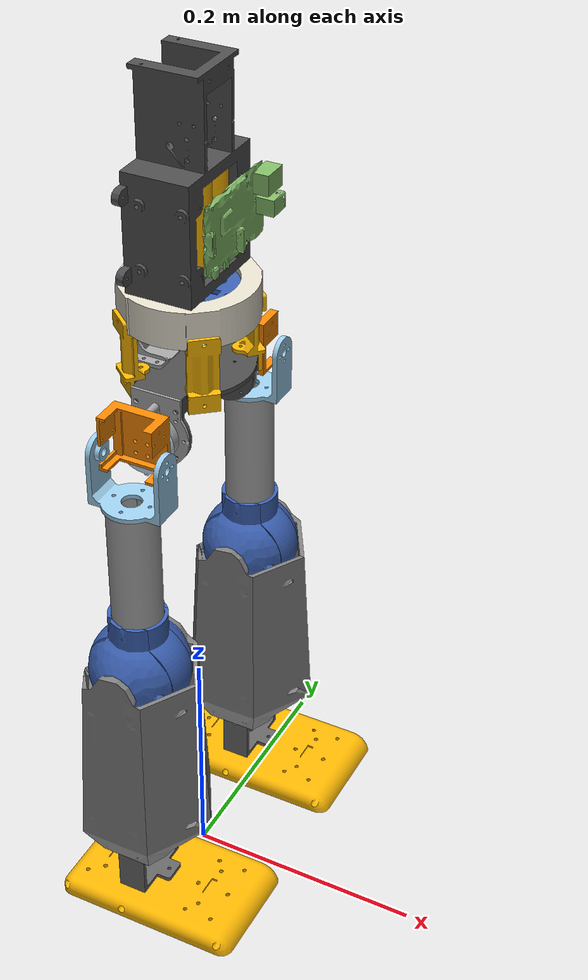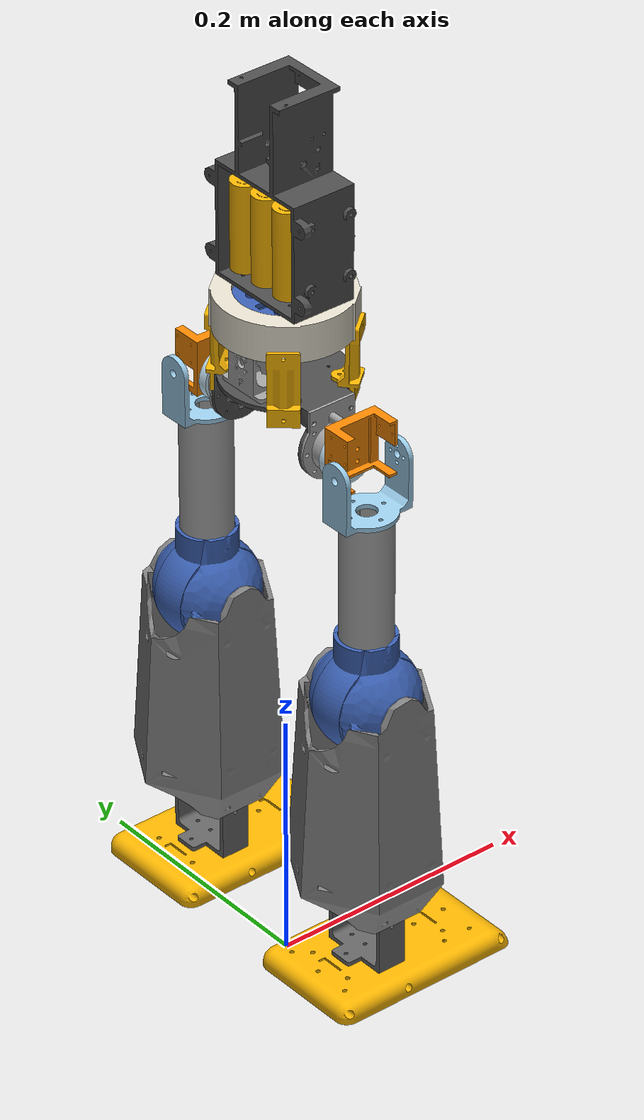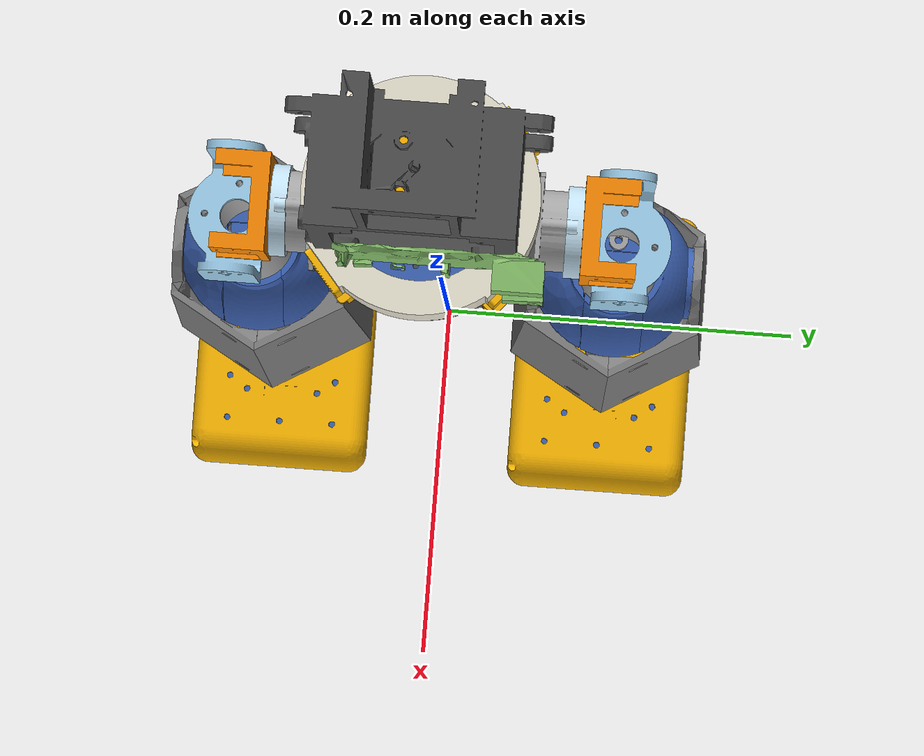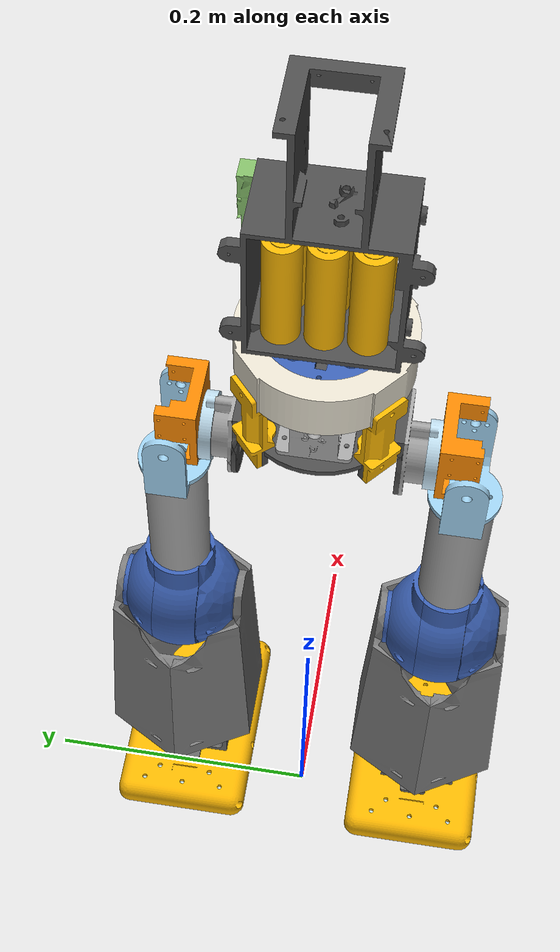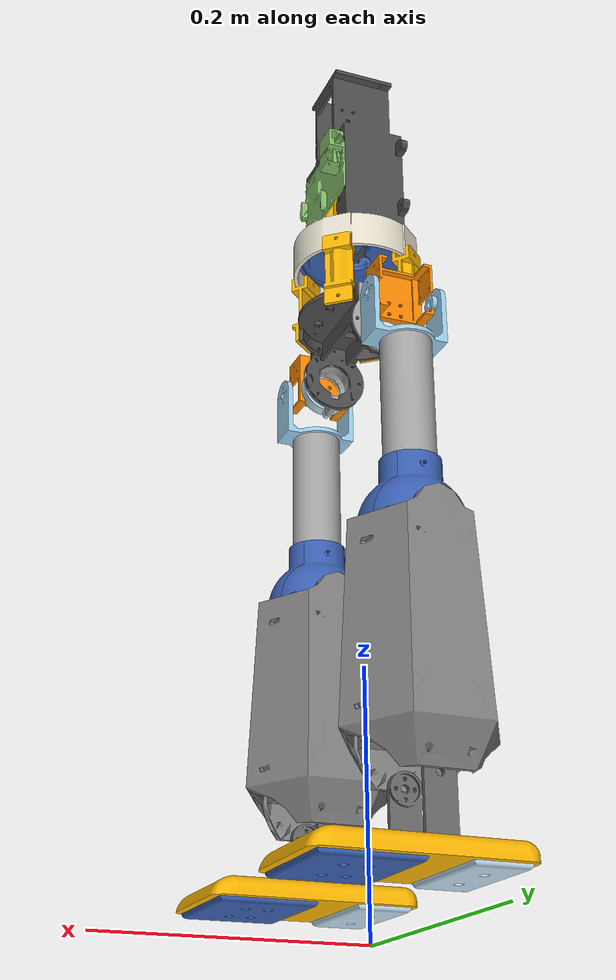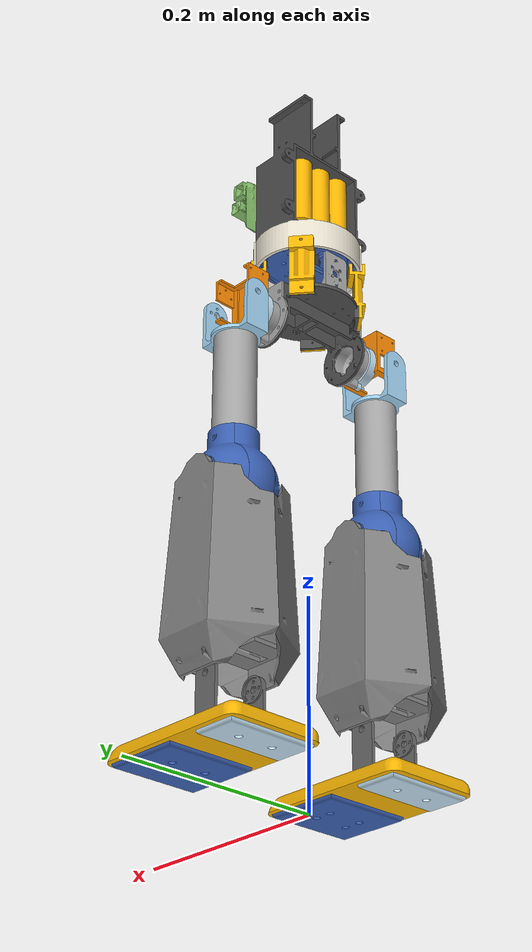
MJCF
<mujoco model="WildRobotDev">
  <option>
    <flag eulerdamp="disable" />
  </option>
  <compiler angle="radian" meshdir="assets" autolimits="true" />
  <default>
    <default class="WildRobotDev">
      <joint frictionloss="0.1" armature="0.005" />
      <position kp="50" dampratio="1" />
      <default class="visual">
        <geom type="mesh" contype="0" conaffinity="0" group="2" />
      </default>
      <default class="collision">
        <geom group="3" type="sphere" />
      </default>
    </default>
    <default class="htd45hServo">
      <geom contype="0" conaffinity="0" />
      <joint damping="0.08516" frictionloss="0.022275" armature="0.024992" />
      <position kp="21.1" kv="0.5" forcerange="-4.0 4.0" />
    </default>
    <default class="backlash">
      <joint damping="0.01" frictionloss="0" armature="0.01" limited="true" range="-0.008726646259971648 0.008726646259971648" />
    </default>
  </default>
  <sensor>
    <gyro site="chest_imu" name="chest_imu_gyro" noise="0.0002" cutoff="100" />
    <accelerometer site="chest_imu" name="chest_imu_accel" noise="0.0015" cutoff="100" />
    <magnetometer site="chest_imu" name="chest_imu_mag" noise="0.3" />
    <framequat objtype="site" objname="chest_imu" name="chest_imu_quat" />
    <velocimeter site="pelvis_mimic" name="pelvis_local_linvel" />
  </sensor>
  <worldbody>
    <body name="waist" pos="0 0 0.5" quat="1 0 0 0" childclass="WildRobotDev">
      <freejoint name="waist_freejoint" />
      <inertial pos="0.00207427 0.00159876 0.0785345" mass="1.28083" fullinertia="0.00602084 0.00549671 0.00162867 -0.000111987 -0.00020739 -0.000103631" />
      <geom type="mesh" class="visual" pos="0.000128558 -0.000153209 0.12518" quat="0.34202 -1.65887e-17 -5.55112e-17 -0.939693" mesh="waist_trunk_support" material="waist_trunk_support_material" />
      <geom type="mesh" class="visual" pos="-1.8982e-19 0 0" quat="0.707107 0 0 -0.707107" mesh="trunk_bottom" material="trunk_bottom_material" />
      <geom type="mesh" class="visual" pos="5.89806e-17 -3.1225e-17 0" quat="0.707107 0 0 -0.707107" mesh="trunk_servo_connect" material="trunk_servo_connect_material" />
      <geom type="mesh" class="visual" pos="1.38778e-17 -0.00025 1.47949e-17" quat="0.707107 0 0 0.707107" mesh="hip_cover" material="hip_cover_material" />
      <geom type="mesh" class="visual" pos="-1.59595e-16 -1.66533e-16 0.12518" quat="0.34202 -5.80156e-17 0 -0.939693" mesh="scroll_out" material="scroll_out_material" />
      <geom type="mesh" class="visual" pos="0.000128558 0.000153209 0.12518" quat="0.939693 -2.94205e-17 -1.35637e-16 -0.34202" mesh="waist_trunk_support" material="waist_trunk_support_material" />
      <geom type="mesh" class="visual" pos="1.38778e-17 -0.0001 1.53661e-17" quat="0.707107 0 1.11022e-16 0.707107" mesh="hip_trunk_connect" material="hip_trunk_connect_material" />
      <geom type="mesh" class="visual" pos="-0.000128558 -0.000153209 0.12518" quat="0.34202 -0 -5.91646e-31 0.939693" mesh="waist_trunk_support" material="waist_trunk_support_material" />
      <geom type="mesh" class="visual" pos="-0.000128558 0.000153209 0.12518" quat="0.939693 0 -0 0.34202" mesh="waist_trunk_support" material="waist_trunk_support_material" />
      <geom type="mesh" class="visual" pos="-1.38778e-17 0.00025 1.46954e-17" quat="0.707107 0 2.22045e-16 -0.707107" mesh="hip_cover" material="hip_cover_material" />
      <geom type="mesh" class="visual" pos="-1.38778e-17 0.0001 1.3452e-17" quat="0.707107 0 1.11022e-16 -0.707107" mesh="hip_trunk_connect" material="hip_trunk_connect_material" />
      <geom type="mesh" class="visual" pos="-0.21121 0.0233777 0.0810344" quat="0.499502 -0.500498 -0.500085 0.499915" mesh="cell" material="cell_material" />
      <geom type="mesh" class="visual" pos="0.031089 0.00995652 0.116228" quat="0.000704463 0.707107 0.707106 0.000120096" mesh="rp_assemble" material="rp_assemble_material" />
      <geom type="mesh" class="visual" pos="0.023299 -4.3479e-05 0.116227" quat="0.707106 0.000120096 -0.000704463 -0.707107" mesh="batterybox" material="batterybox_material" />
      <geom type="mesh" class="visual" pos="-0.23501 -7.2321e-05 0.0810261" quat="0.499502 -0.500498 -0.500085 0.499915" mesh="cell" material="cell_material" />
      <geom type="mesh" class="visual" pos="-0.23501 -0.0235223 0.0810454" quat="0.499502 -0.500498 -0.500085 0.499915" mesh="cell" material="cell_material" />
      <geom type="mesh" class="visual" pos="-0.000210713 -3.65539e-05 0.124579" quat="0.707107 -0.000704463 -0.000120096 0.707106" mesh="waist_platform" material="waist_platform_material" />
      <geom type="mesh" class="visual" pos="-0.000210713 -3.65539e-05 0.124579" quat="0.707107 -0.000704463 -0.000120096 0.707106" mesh="waist_platform_2" material="waist_platform_2_material" />
      <geom type="mesh" class="visual" pos="-0.23501 0.0233777 0.0810067" quat="0.499502 -0.500498 -0.500085 0.499915" mesh="cell" material="cell_material" />
      <geom type="mesh" class="visual" pos="-0.21121 -0.0235223 0.0810732" quat="0.499502 -0.500498 -0.500085 0.499915" mesh="cell" material="cell_material" />
      <geom type="mesh" class="visual" pos="-0.21121 -7.2321e-05 0.0810538" quat="0.499502 -0.500498 -0.500085 0.499915" mesh="cell" material="cell_material" />
      <site group="3" name="pelvis_mimic" pos="0 0 0" quat="1 0 0 0" />
      <body name="pelvis_mimic" pos="0 0 0" quat="1 0 0 0">
        <inertial pos="0 0 0" mass="0.001" diaginertia="0.000001 0.000001 0.000001" />
      </body>
      <site group="3" name="chest_imu" pos="-0.000260412 0.000259929 0.1672" quat="1 -0.00041321 -0.000583051 -2.40923e-07" />
      <body name="left_hip" pos="-4.74705e-05 0.0536 -0.0335836" quat="0.000292354 -0.000292013 0.707519 -0.706694">
        <joint axis="0 0 1" name="left_hip_pitch" type="hinge" range="-0.08726835630835118 1.5707944330862618" class="htd45hServo" />
        <inertial pos="-0.00291442 -0.00897832 -0.0331054" mass="0.0849728" fullinertia="2.00234e-05 1.92641e-05 2.44282e-05 3.89653e-07 -8.25998e-07 -1.4809e-06" />
        <geom type="mesh" class="visual" pos="-9.99364e-05 -0.03359 0.0566" quat="0.5 0.5 0.5 -0.5" mesh="hip_servo_hook_left" material="hip_servo_hook_left_material" />
        <body name="upper_leg" pos="-0.0269 -0.00016648 -0.0365475" quat="0.707399 -0.000412779 0.706814 0.00041312">
          <joint axis="0 0 1" name="left_hip_roll" type="hinge" range="-1.5707963267948664 0.17453292519946315" class="htd45hServo" />
          <inertial pos="-0.00109676 0.15941 0.0267063" mass="0.236565" fullinertia="0.000988751 0.000126498 0.000981911 1.04431e-05 -1.12408e-08 1.05493e-06" />
          <geom type="mesh" class="visual" pos="-0.095 -4.85723e-17 0.0267" quat="0.707107 0.707107 5.44009e-15 -5.43327e-15" mesh="up_leg_servo_connect" material="up_leg_servo_connect_material" />
          <geom type="mesh" class="visual" pos="-0.095 1.4988e-15 0.0267" quat="0.707107 0.707107 1.35447e-14 -1.34176e-14" mesh="up_leg" material="up_leg_material" />
          <geom type="mesh" class="visual" pos="-0.095 -0.0002 0.0267" quat="0.707107 0.707107 1.36557e-14 -1.33446e-14" mesh="knee_ball_left" material="knee_ball_left_material" />
          <geom type="mesh" class="visual" pos="-0.095 -0.0002 0.0267" quat="0.707107 0.707107 1.36557e-14 -1.34176e-14" mesh="knee_ball_mid" material="knee_ball_mid_material" />
          <geom type="mesh" class="visual" pos="-0.095 -0.0002 0.0267" quat="0.707107 0.707107 1.36557e-14 -1.33446e-14" mesh="knee_ball_right" material="knee_ball_right_material" />
          <site group="3" name="left_knee_mimic" pos="0.000138461 0.192701 0.0266255" quat="0.49875 0.501659 0.498338 -0.501244" />
          <body name="left_knee_mimic" pos="0.000138461 0.192701 0.0266255" quat="0.49875 0.501659 0.498338 -0.501244">
            <inertial pos="0 0 0" mass="0.001" diaginertia="0.000001 0.000001 0.000001" />
          </body>
          <site group="3" name="left_knee_imu" pos="-1.06859e-15 0.173352 0.0264651" quat="0.5 0.5 0.5 -0.5" />
          <body name="lower_leg" pos="-0.02705 0.192552 0.0267" quat="1.63398e-14 -0.707107 1.62093e-14 -0.707107">
            <joint axis="0 0 1" name="left_knee_pitch" type="hinge" range="0.0 1.3962634015954636" class="htd45hServo" />
            <inertial pos="-0.000528282 -0.102749 0.0267516" mass="0.37567" fullinertia="0.00172198 0.000666836 0.0016363 1.91588e-05 9.23751e-08 -2.38646e-05" />
            <geom type="mesh" class="visual" pos="-2.97454e-15 0.192752 -0.0677579" quat="0.5 -0.5 -0.5 -0.5" mesh="low_leg_right" material="low_leg_right_material" />
            <geom type="mesh" class="visual" pos="-2.9924e-16 0.192752 -0.0677579" quat="0.5 -0.5 -0.5 -0.5" mesh="low_leg_left" material="low_leg_left_material" />
            <site group="3" name="left_ankle_mimic" pos="4.95231e-05 -0.179866 0.0276306" quat="7.36303e-15 -7.37627e-15 -0.704634 -0.709571" />
            <body name="left_ankle_mimic" pos="4.95231e-05 -0.179866 0.0276306" quat="7.36303e-15 -7.37627e-15 -0.704634 -0.709571">
              <inertial pos="0 0 0" mass="0.001" diaginertia="0.000001 0.000001 0.000001" />
            </body>
            <body name="left_foot" pos="-4.74705e-05 -0.179984 0.000442075" quat="2.40923e-07 -0.00041321 0.000583051 -1">
              <joint axis="0 0 1" name="left_ankle_pitch" type="hinge" range="-0.6981317007977318 0.7853981633974483" class="htd45hServo" />
              <inertial pos="0.0185843 0.0509994 0.0268937" mass="0.311" fullinertia="0.00025348 0.000813963 0.000610718 -1.25211e-05 -1.48261e-07 -8.48921e-07" />
              <geom type="mesh" class="visual" pos="4.22839e-18 0.0435 0.1868" quat="0.5 0.5 -0.5 0.5" mesh="foot_main" material="foot_main_material" />
              <geom type="mesh" class="visual" pos="0.000150285 0.0432 0.0268" quat="0.5 0.5 -0.5 0.5" mesh="heel_btm" material="heel_btm_material" />
              <geom type="mesh" class="collision" pos="0.000150285 0.0432 0.0268" quat="0.5 0.5 -0.5 0.5" mesh="heel_btm" material="heel_btm_material" name="left_heel" />
              <geom type="mesh" class="visual" pos="-8.36518e-05 0.0432 0.0268" quat="0.5 0.5 -0.5 0.5" mesh="toe_btm" material="toe_btm_material" />
              <geom type="mesh" class="collision" pos="-8.36518e-05 0.0432 0.0268" quat="0.5 0.5 -0.5 0.5" mesh="toe_btm" material="toe_btm_material" name="left_toe" />
              <geom type="mesh" class="visual" pos="2.46114e-17 0.0732 0.0268" quat="0.5 0.5 -0.5 0.5" mesh="servo_bracket_top" material="servo_bracket_top_material" />
            </body>
          </body>
        </body>
      </body>
      <body name="right_hip" pos="4.74705e-05 -0.0536 -0.0335836" quat="0.706694 -0.707519 -0.000292013 0.000292354">
        <joint axis="0 0 1" name="right_hip_pitch" type="hinge" range="-1.5707965962257178 0.08726619316889528" class="htd45hServo" />
        <inertial pos="0.00272375 -0.00897832 -0.0331404" mass="0.0849728" fullinertia="2.00434e-05 1.92798e-05 2.44237e-05 -3.96751e-07 7.91944e-07 -1.48675e-06" />
        <geom type="mesh" class="visual" pos="-9.99909e-05 -0.03359 0.0566" quat="0.5 0.5 -0.5 0.5" mesh="hip_servo_hook_right" material="hip_servo_hook_right_material" />
        <body name="upper_leg_2" pos="0.0267 -0.000166421 -0.0364525" quat="0.706814 -0.000412355 -0.707399 -0.000412014">
          <joint axis="0 0 1" name="right_hip_roll" type="hinge" range="-0.17453292519943295 1.5707963267948966" class="htd45hServo" />
          <inertial pos="-0.00109676 0.15941 0.0267063" mass="0.236565" fullinertia="0.000988751 0.000126498 0.000981911 1.04431e-05 -1.12408e-08 1.05493e-06" />
          <geom type="mesh" class="visual" pos="-0.095 -0.0002 0.0267" quat="0.707107 0.707107 2.22045e-16 2.21178e-16" mesh="knee_ball_left" material="knee_ball_left_material" />
          <geom type="mesh" class="visual" pos="-0.095 -0.0002 0.0267" quat="0.707107 0.707107 2.22045e-16 2.21014e-16" mesh="knee_ball_mid" material="knee_ball_mid_material" />
          <geom type="mesh" class="visual" pos="-0.095 -0.0002 0.0267" quat="0.707107 0.707107 -8.32667e-15 9.96695e-15" mesh="knee_ball_right" material="knee_ball_right_material" />
          <geom type="mesh" class="visual" pos="-0.095 -8.21024e-13 0.0267" quat="0.707107 0.707107 -4.44089e-16 7.66338e-16" mesh="up_leg_servo_connect" material="up_leg_servo_connect_material" />
          <geom type="mesh" class="visual" pos="-0.095 -8.22092e-13 0.0267" quat="0.707107 0.707107 2.22045e-16 2.2109e-16" mesh="up_leg" material="up_leg_material" />
          <site group="3" name="right_knee_mimic" pos="0.000138461 0.192701 0.0266255" quat="0.49875 0.501659 0.498338 -0.501244" />
          <body name="right_knee_mimic" pos="0.000138461 0.192701 0.0266255" quat="0.49875 0.501659 0.498338 -0.501244">
            <inertial pos="0 0 0" mass="0.001" diaginertia="0.000001 0.000001 0.000001" />
          </body>
          <site group="3" name="right_knee_imu" pos="2.88658e-15 0.173352 0.0264651" quat="0.5 0.5 0.5 -0.5" />
          <body name="lower_leg_2" pos="-0.02705 0.192552 0.0267" quat="1.08512e-11 -0.707107 1.08507e-11 -0.707107">
            <joint axis="0 0 1" name="right_knee_pitch" type="hinge" range="0.0 1.3962634015954636" class="htd45hServo" />
            <inertial pos="-0.000528282 -0.102749 0.0267516" mass="0.37567" fullinertia="0.00172198 0.000666836 0.0016363 1.91588e-05 9.23751e-08 -2.38646e-05" />
            <geom type="mesh" class="visual" pos="-1.64471e-15 0.192752 -0.0677579" quat="0.5 -0.5 -0.5 -0.5" mesh="low_leg_right" material="low_leg_right_material" />
            <geom type="mesh" class="visual" pos="-2.15255e-16 0.192752 -0.0677579" quat="0.5 -0.5 -0.5 -0.5" mesh="low_leg_left" material="low_leg_left_material" />
            <site group="3" name="right_ankle_mimic" pos="4.95231e-05 -0.179866 0.0276306" quat="7.04992e-15 -7.09426e-15 -0.704634 -0.709571" />
            <body name="right_ankle_mimic" pos="4.95231e-05 -0.179866 0.0276306" quat="7.04992e-15 -7.09426e-15 -0.704634 -0.709571">
              <inertial pos="0 0 0" mass="0.001" diaginertia="0.000001 0.000001 0.000001" />
            </body>
            <body name="right_foot" pos="-4.74705e-05 -0.179984 0.000442075" quat="2.40923e-07 -0.00041321 0.000583051 -1">
              <joint axis="0 0 1" name="right_ankle_pitch" type="hinge" range="-0.6981317007977291 0.7853981633974509" class="htd45hServo" />
              <inertial pos="0.0185843 0.0509994 0.0268937" mass="0.311" fullinertia="0.00025348 0.000813963 0.000610718 -1.25211e-05 -1.48261e-07 -8.48921e-07" />
              <geom type="mesh" class="visual" pos="1.31866e-16 0.0435 0.1868" quat="0.5 0.5 -0.5 0.5" mesh="foot_main" material="foot_main_material" />
              <geom type="mesh" class="visual" pos="0.000150285 0.0432 0.0268" quat="0.5 0.5 -0.5 0.5" mesh="heel_btm" material="heel_btm_material" />
              <geom type="mesh" class="collision" pos="0.000150285 0.0432 0.0268" quat="0.5 0.5 -0.5 0.5" mesh="heel_btm" material="heel_btm_material" name="right_heel" />
              <geom type="mesh" class="visual" pos="-8.36518e-05 0.0432 0.0268" quat="0.5 0.5 -0.5 0.5" mesh="toe_btm" material="toe_btm_material" />
              <geom type="mesh" class="collision" pos="-8.36518e-05 0.0432 0.0268" quat="0.5 0.5 -0.5 0.5" mesh="toe_btm" material="toe_btm_material" name="right_toe" />
              <geom type="mesh" class="visual" pos="2.08031e-16 0.0732 0.0268" quat="0.5 0.5 -0.5 0.5" mesh="servo_bracket_top" material="servo_bracket_top_material" />
            </body>
          </body>
        </body>
      </body>
    </body>
  </worldbody>
  <asset>
    <mesh file="hip_servo_hook_left.stl" />
    <mesh file="waist_trunk_support.stl" />
    <mesh file="up_leg_servo_connect.stl" />
    <mesh file="hip_cover.stl" />
    <mesh file="knee_ball_right.stl" />
    <mesh file="foot_main.stl" />
    <mesh file="batterybox.stl" />
    <mesh file="hip_trunk_connect.stl" />
    <mesh file="cell.stl" />
    <mesh file="rp_assemble.stl" />
    <mesh file="scroll_out.stl" />
    <mesh file="heel_btm.stl" />
    <mesh file="servo_bracket_top.stl" />
    <mesh file="trunk_bottom.stl" />
    <mesh file="knee_ball_left.stl" />
    <mesh file="up_leg.stl" />
    <mesh file="low_leg_left.stl" />
    <mesh file="trunk_servo_connect.stl" />
    <mesh file="knee_ball_mid.stl" />
    <mesh file="low_leg_right.stl" />
    <mesh file="hip_servo_hook_right.stl" />
    <mesh file="toe_btm.stl" />
    <mesh file="waist_platform_2.stl" />
    <mesh file="waist_platform.stl" />
    <material name="waist_trunk_support_material" rgba="0.980392 0.713725 0.00392157 1" />
    <material name="trunk_bottom_material" rgba="0.301961 0.301961 0.301961 1" />
    <material name="trunk_servo_connect_material" rgba="0.647059 0.647059 0.647059 1" />
    <material name="hip_cover_material" rgba="0.768627 0.886275 0.952941 1" />
    <material name="scroll_out_material" rgba="0.901961 0.878431 0.811765 1" />
    <material name="hip_trunk_connect_material" rgba="0.647059 0.647059 0.647059 1" />
    <material name="cell_material" rgba="0.980392 0.713725 0.00392157 1" />
    <material name="rp_assemble_material" rgba="0.513725 0.737255 0.407843 1" />
    <material name="batterybox_material" rgba="0.301961 0.301961 0.301961 1" />
    <material name="waist_platform_material" rgba="0.231373 0.380392 0.705882 1" />
    <material name="waist_platform_2_material" rgba="0.231373 0.380392 0.705882 1" />
    <material name="hip_servo_hook_left_material" rgba="0.972549 0.529412 0.00392157 1" />
    <material name="up_leg_servo_connect_material" rgba="0.615686 0.811765 0.929412 1" />
    <material name="up_leg_material" rgba="0.647059 0.647059 0.647059 1" />
    <material name="knee_ball_left_material" rgba="0.231373 0.380392 0.705882 1" />
    <material name="knee_ball_mid_material" rgba="0.231373 0.380392 0.705882 1" />
    <material name="knee_ball_right_material" rgba="0.231373 0.380392 0.705882 1" />
    <material name="low_leg_right_material" rgba="0.498039 0.498039 0.498039 1" />
    <material name="low_leg_left_material" rgba="0.498039 0.498039 0.498039 1" />
    <material name="foot_main_material" rgba="0.980392 0.713725 0.00392157 1" />
    <material name="heel_btm_material" rgba="0.768627 0.886275 0.952941 1" />
    <material name="toe_btm_material" rgba="0.231373 0.380392 0.705882 1" />
    <material name="servo_bracket_top_material" rgba="0.4 0.4 0.4 1" />
    <material name="hip_servo_hook_right_material" rgba="0.972549 0.529412 0.00392157 1" />
  </asset>
  <actuator>
    <position class="htd45hServo" name="left_hip_pitch" joint="left_hip_pitch" inheritrange="1" />
    <position class="htd45hServo" name="left_hip_roll" joint="left_hip_roll" inheritrange="1" />
    <position class="htd45hServo" name="left_knee_pitch" joint="left_knee_pitch" inheritrange="1" />
    <position class="htd45hServo" name="left_ankle_pitch" joint="left_ankle_pitch" inheritrange="1" />
    <position class="htd45hServo" name="right_hip_pitch" joint="right_hip_pitch" inheritrange="1" />
    <position class="htd45hServo" name="right_hip_roll" joint="right_hip_roll" inheritrange="1" />
    <position class="htd45hServo" name="right_knee_pitch" joint="right_knee_pitch" inheritrange="1" />
    <position class="htd45hServo" name="right_ankle_pitch" joint="right_ankle_pitch" inheritrange="1" />
  </actuator>
  <equality />
</mujoco>
